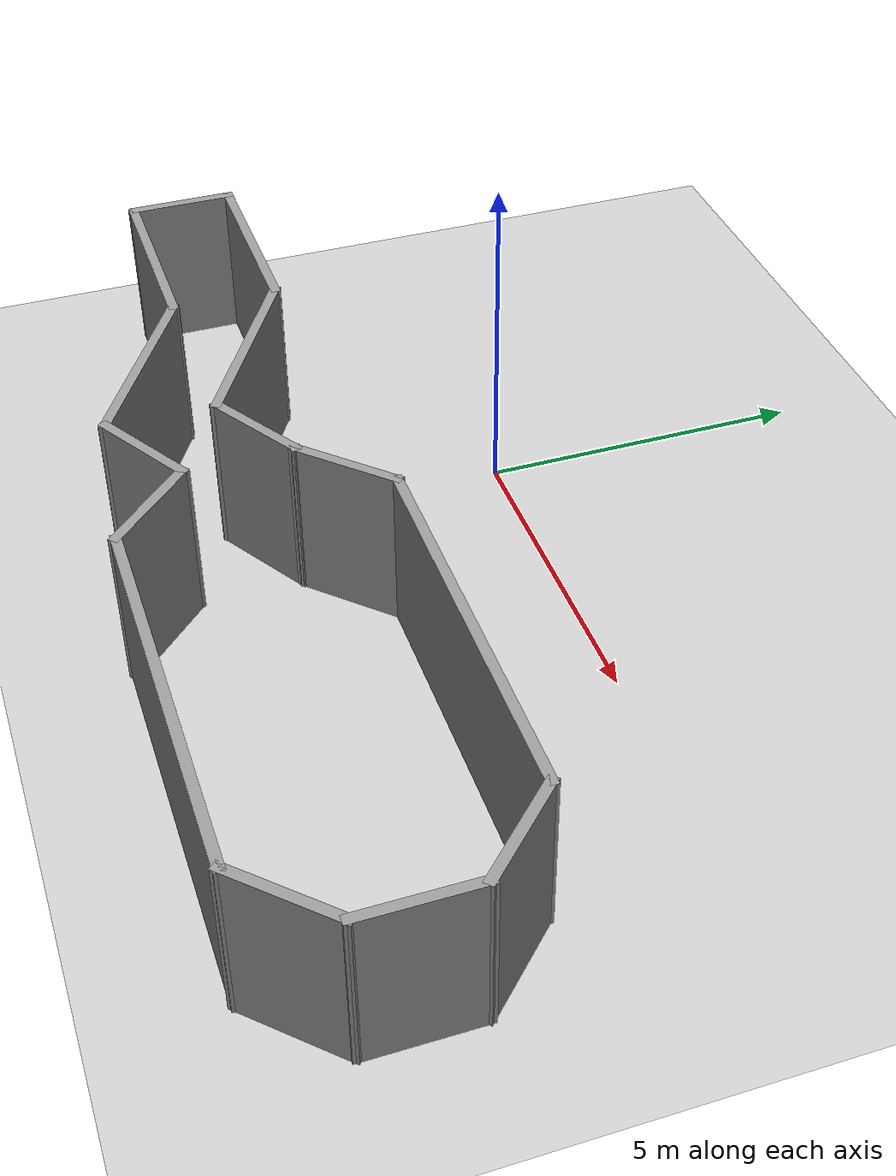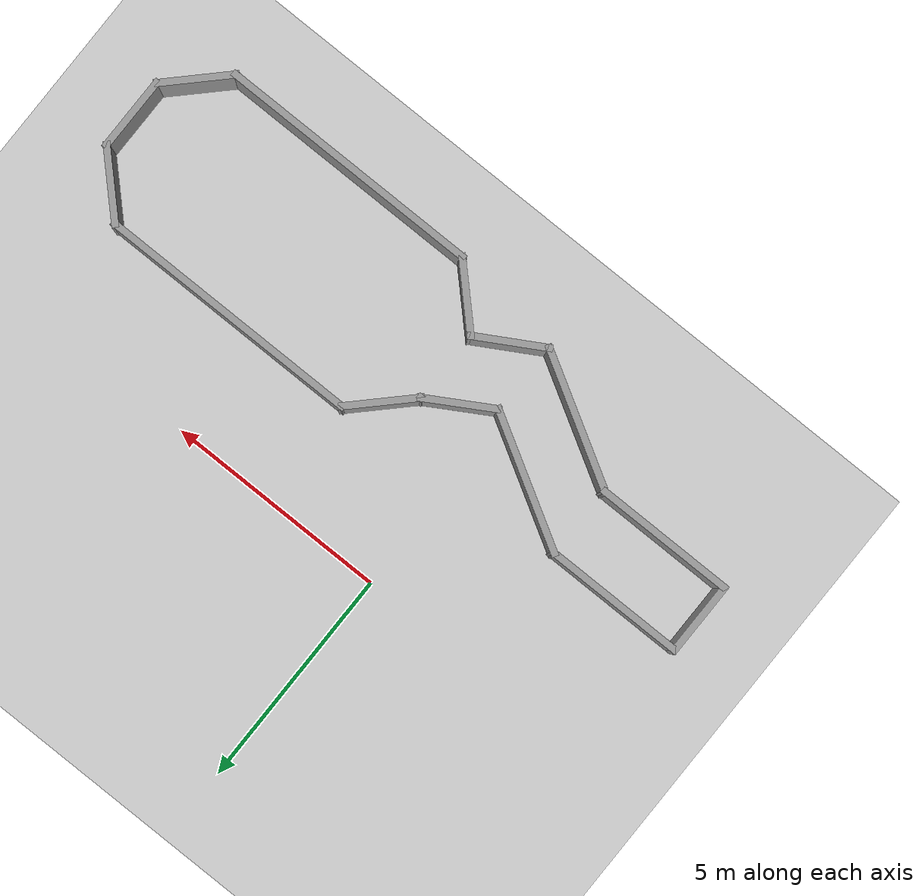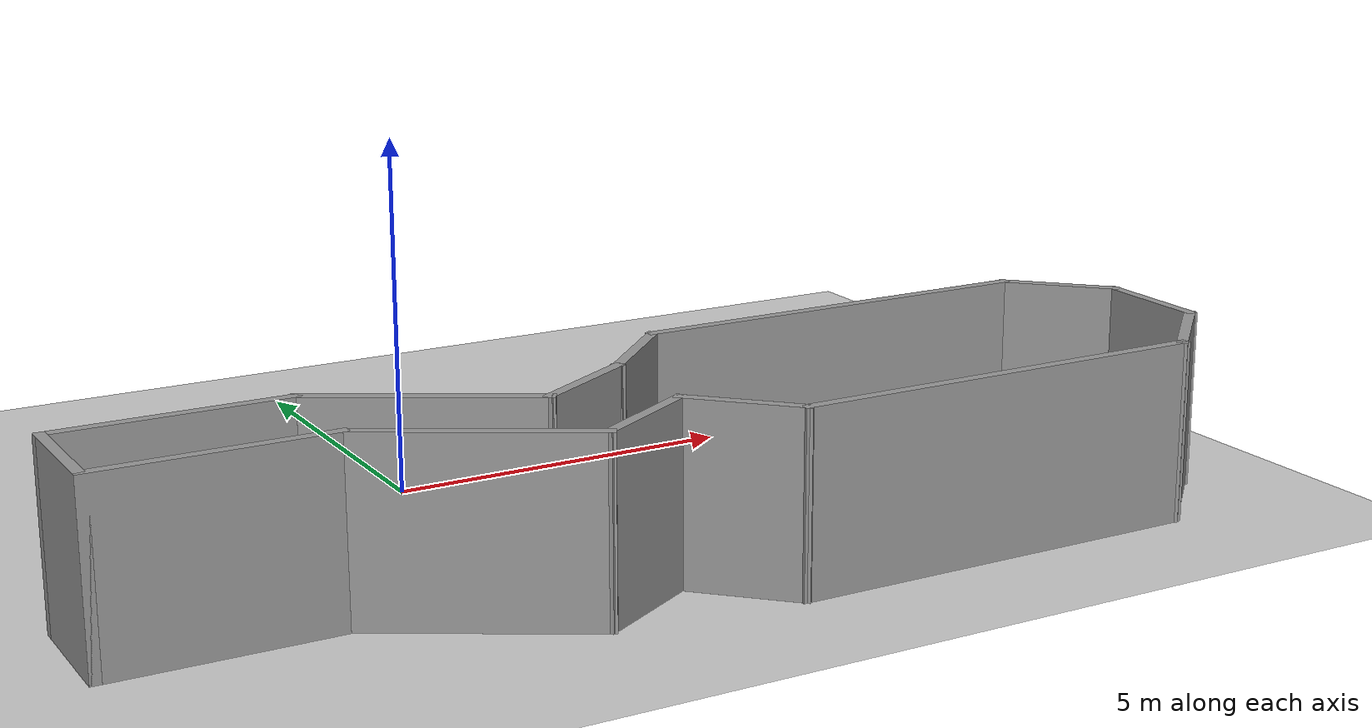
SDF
<sdf version="1.7">
 <world name="racecar_tunnel">
  <light name="sun" type="directional">
   <pose>0 0 10 0 -0 0</pose>
   <diffuse>0.8 0.8 0.8 1</diffuse>
   <specular>0.2 0.2 0.2 1</specular>
   <attenuation>
    <range>1000</range>
    <constant>0.9</constant>
    <linear>0.01</linear>
    <quadratic>0.001</quadratic>
   </attenuation>
   <direction>-0.5 0.1 -0.9</direction>
   <spot><inner_angle>0</inner_angle><outer_angle>0</outer_angle><falloff>0</falloff></spot>
  </light>
  <model name="ground_plane">
   <static>1</static>
   <link name="link">
    <collision name="collision">
     <geometry><plane><normal>0 0 1</normal><size>150 150</size></plane></geometry>
     <surface><friction><ode><mu>100</mu><mu2>50</mu2></ode></friction></surface>
    </collision>
    <visual name="visual">
     <cast_shadows>0</cast_shadows>
     <geometry><plane><normal>0 0 1</normal><size>150 150</size></plane></geometry>
     <material>
      <script><uri>file://media/materials/scripts/gazebo.material</uri><name>Gazebo/Grey</name></script>
     </material>
    </visual>
   </link>
  </model>
  <gravity>0 0 -9.8</gravity>
  <magnetic_field>6e-06 2.3e-05 -4.2e-05</magnetic_field>
  <atmosphere type="adiabatic"/>
  <physics type="ode">
   <max_step_size>0.001</max_step_size>
   <real_time_factor>1</real_time_factor>
   <real_time_update_rate>1000</real_time_update_rate>
  </physics>
  <scene><ambient>0.4 0.4 0.4 1</ambient><background>0.7 0.7 0.7 1</background><shadows>1</shadows></scene>
  <spherical_coordinates>
   <surface_model>EARTH_WGS84</surface_model>
   <latitude_deg>0</latitude_deg>
   <longitude_deg>0</longitude_deg>
   <elevation>0</elevation>
   <heading_deg>0</heading_deg>
  </spherical_coordinates>
  <model name="Untitled1">
   <pose>2.05371 -3.74626 0 0 -0 0</pose>
   <link name="Wall_16">
    <collision name="Wall_16_Collision">
     <geometry><box><size>1.75 0.15 2.5</size></box></geometry>
     <pose>0 0 1.25 0 -0 0</pose>
    </collision>
    <visual name="Wall_16_Visual">
     <pose>0 0 1.25 0 -0 0</pose>
     <geometry><box><size>1.75 0.15 2.5</size></box></geometry>
     <material>
      <script><uri>file://media/materials/scripts/gazebo.material</uri><name>Gazebo/Grey</name></script>
      <ambient>1 1 1 1</ambient>
     </material>
     <meta><layer>0</layer></meta>
    </visual>
    <pose>-7.64384 0.162395 0 0 -0 -1.5708</pose>
   </link>
   <link name="Wall_17">
    <collision name="Wall_17_Collision">
     <geometry><box><size>3.22355 0.15 2.5</size></box></geometry>
     <pose>0 0 1.25 0 -0 0</pose>
    </collision>
    <visual name="Wall_17_Visual">
     <pose>0 0 1.25 0 -0 0</pose>
     <geometry><box><size>3.22355 0.15 2.5</size></box></geometry>
     <material>
      <script><uri>file://media/materials/scripts/gazebo.material</uri><name>Gazebo/Grey</name></script>
      <ambient>1 1 1 1</ambient>
     </material>
     <meta><layer>0</layer></meta>
    </visual>
    <pose>-6.10706 -0.637605 0 0 -0 0</pose>
   </link>
   <link name="Wall_21">
    <collision name="Wall_21_Collision">
     <geometry><box><size>3.25 0.15 2.5</size></box></geometry>
     <pose>0 0 1.25 0 -0 0</pose>
    </collision>
    <visual name="Wall_21_Visual">
     <pose>0 0 1.25 0 -0 0</pose>
     <geometry><box><size>3.25 0.15 2.5</size></box></geometry>
     <material>
      <script><uri>file://media/materials/scripts/gazebo.material</uri><name>Gazebo/Grey</name></script>
      <ambient>1 1 1 1</ambient>
     </material>
     <meta><layer>0</layer></meta>
    </visual>
    <pose>-3.22795 -1.41261 0 0 -0 -0.523599</pose>
   </link>
   <link name="Wall_22">
    <collision name="Wall_22_Collision">
     <geometry><box><size>1.75 0.15 2.5</size></box></geometry>
     <pose>0 0 1.25 0 -0 0</pose>
    </collision>
    <visual name="Wall_22_Visual">
     <pose>0 0 1.25 0 -0 0</pose>
     <geometry><box><size>1.75 0.15 2.5</size></box></geometry>
     <material>
      <script><uri>file://media/materials/scripts/gazebo.material</uri><name>Gazebo/Grey</name></script>
      <ambient>1 1 1 1</ambient>
     </material>
     <meta><layer>0</layer></meta>
    </visual>
    <pose>-1.19279 -1.78761 0 0 -0 0.523599</pose>
   </link>
   <link name="Wall_25">
    <collision name="Wall_25_Collision">
     <geometry><box><size>1.75 0.15 2.5</size></box></geometry>
     <pose>0 0 1.25 0 -0 0</pose>
    </collision>
    <visual name="Wall_25_Visual">
     <pose>0 0 1.25 0 -0 0</pose>
     <geometry><box><size>1.75 0.15 2.5</size></box></geometry>
     <material>
      <script><uri>file://media/materials/scripts/gazebo.material</uri><name>Gazebo/Grey</name></script>
      <ambient>1 1 1 1</ambient>
     </material>
     <meta><layer>0</layer></meta>
    </visual>
    <pose>0.065717 -1.95329 0 0 -0 -0.785398</pose>
   </link>
   <link name="Wall_33">
    <collision name="Wall_33_Collision">
     <geometry><box><size>1.75 0.15 2.5</size></box></geometry>
     <pose>0 0 1.25 0 -0 0</pose>
    </collision>
    <visual name="Wall_33_Visual">
     <pose>0 0 1.25 0 -0 0</pose>
     <geometry><box><size>1.75 0.15 2.5</size></box></geometry>
     <material>
      <script><uri>file://media/materials/scripts/gazebo.material</uri><name>Gazebo/Grey</name></script>
      <ambient>1 1 1 1</ambient>
     </material>
     <meta><layer>0</layer></meta>
    </visual>
    <pose>0.065717 0.778081 0 0 -0 0.785398</pose>
   </link>
   <link name="Wall_35">
    <collision name="Wall_35_Collision">
     <geometry><box><size>3.25 0.15 2.5</size></box></geometry>
     <pose>0 0 1.25 0 -0 0</pose>
    </collision>
    <visual name="Wall_35_Visual">
     <pose>0 0 1.25 0 -0 0</pose>
     <geometry><box><size>3.25 0.15 2.5</size></box></geometry>
     <material>
      <script><uri>file://media/materials/scripts/gazebo.material</uri><name>Gazebo/Grey</name></script>
      <ambient>1 1 1 1</ambient>
     </material>
     <meta><layer>0</layer></meta>
    </visual>
    <pose>-6.09384 0.962395 0 0 -0 0</pose>
   </link>
   <link name="Wall_36">
    <collision name="Wall_36_Collision">
     <geometry><box><size>3.25 0.15 2.5</size></box></geometry>
     <pose>0 0 1.25 0 -0 0</pose>
    </collision>
    <visual name="Wall_36_Visual">
     <pose>0 0 1.25 0 -0 0</pose>
     <geometry><box><size>3.25 0.15 2.5</size></box></geometry>
     <material>
      <script><uri>file://media/materials/scripts/gazebo.material</uri><name>Gazebo/Grey</name></script>
      <ambient>1 1 1 1</ambient>
     </material>
     <meta><layer>0</layer></meta>
    </visual>
    <pose>-3.2015 0.187395 0 0 -0 -0.523599</pose>
   </link>
   <link name="Wall_37">
    <collision name="Wall_37_Collision">
     <geometry><box><size>1.72715 0.15 2.5</size></box></geometry>
     <pose>0 0 1.25 0 -0 0</pose>
    </collision>
    <visual name="Wall_37_Visual">
     <pose>0 0 1.25 0 -0 0</pose>
     <geometry><box><size>1.72715 0.15 2.5</size></box></geometry>
     <material>
      <script><uri>file://media/materials/scripts/gazebo.material</uri><name>Gazebo/Grey</name></script>
      <ambient>1 1 1 1</ambient>
     </material>
     <meta><layer>0</layer></meta>
    </visual>
    <pose>-1.17956 -0.187605 0 0 -0 0.531984</pose>
   </link>
   <link name="Wall_38">
    <collision name="Wall_38_Collision">
     <geometry><box><size>0.15 0.15 2.5</size></box></geometry>
     <pose>0 0 1.25 0 -0 0</pose>
    </collision>
    <visual name="Wall_38_Visual">
     <pose>0 0 1.25 0 -0 0</pose>
     <geometry><box><size>0.15 0.15 2.5</size></box></geometry>
     <material>
      <script><uri>file://media/materials/scripts/gazebo.material</uri><name>Gazebo/Grey</name></script>
      <ambient>1 1 1 1</ambient>
     </material>
     <meta><layer>0</layer></meta>
    </visual>
    <pose>-0.499969 0.212395 0 0 -0 0</pose>
   </link>
   <link name="Wall_40">
    <collision name="Wall_40_Collision">
     <geometry><box><size>6 0.15 2.5</size></box></geometry>
     <pose>0 0 1.25 0 -0 0</pose>
    </collision>
    <visual name="Wall_40_Visual">
     <pose>0 0 1.25 0 -0 0</pose>
     <geometry><box><size>6 0.15 2.5</size></box></geometry>
     <material>
      <script><uri>file://media/materials/scripts/gazebo.material</uri><name>Gazebo/Grey</name></script>
      <ambient>1 1 1 1</ambient>
     </material>
     <meta><layer>0</layer></meta>
    </visual>
    <pose>3.5564 -2.51898 0 0 -0 0</pose>
   </link>
   <link name="Wall_44">
    <collision name="Wall_44_Collision">
     <geometry><box><size>1.75 0.15 2.5</size></box></geometry>
     <pose>0 0 1.25 0 -0 0</pose>
    </collision>
    <visual name="Wall_44_Visual">
     <pose>0 0 1.25 0 -0 0</pose>
     <geometry><box><size>1.75 0.15 2.5</size></box></geometry>
     <material>
      <script><uri>file://media/materials/scripts/gazebo.material</uri><name>Gazebo/Grey</name></script>
      <ambient>1 1 1 1</ambient>
     </material>
     <meta><layer>0</layer></meta>
    </visual>
    <pose>7.04709 -1.95329 0 0 -0 0.785398</pose>
   </link>
   <link name="Wall_46">
    <collision name="Wall_46_Collision">
     <geometry><box><size>6 0.15 2.5</size></box></geometry>
     <pose>0 0 1.25 0 -0 0</pose>
    </collision>
    <visual name="Wall_46_Visual">
     <pose>0 0 1.25 0 -0 0</pose>
     <geometry><box><size>6 0.15 2.5</size></box></geometry>
     <material>
      <script><uri>file://media/materials/scripts/gazebo.material</uri><name>Gazebo/Grey</name></script>
      <ambient>1 1 1 1</ambient>
     </material>
     <meta><layer>0</layer></meta>
    </visual>
    <pose>3.5564 1.34377 0 0 -0 0</pose>
   </link>
   <link name="Wall_47">
    <collision name="Wall_47_Collision">
     <geometry><box><size>1.75 0.15 2.5</size></box></geometry>
     <pose>0 0 1.25 0 -0 0</pose>
    </collision>
    <visual name="Wall_47_Visual">
     <pose>0 0 1.25 0 -0 0</pose>
     <geometry><box><size>1.75 0.15 2.5</size></box></geometry>
     <material>
      <script><uri>file://media/materials/scripts/gazebo.material</uri><name>Gazebo/Grey</name></script>
      <ambient>1 1 1 1</ambient>
     </material>
     <meta><layer>0</layer></meta>
    </visual>
    <pose>7.04709 0.778081 0 0 -0 -0.785398</pose>
   </link>
   <link name="Wall_48">
    <collision name="Wall_48_Collision">
     <geometry><box><size>1.75 0.15 2.5</size></box></geometry>
     <pose>0 0 1.25 0 -0 0</pose>
    </collision>
    <visual name="Wall_48_Visual">
     <pose>0 0 1.25 0 -0 0</pose>
     <geometry><box><size>1.75 0.15 2.5</size></box></geometry>
     <material>
      <script><uri>file://media/materials/scripts/gazebo.material</uri><name>Gazebo/Grey</name></script>
      <ambient>1 1 1 1</ambient>
     </material>
     <meta><layer>0</layer></meta>
    </visual>
    <pose>7.61277 -0.587605 0 0 -0 -1.5708</pose>
   </link>
   <static>1</static>
  </model>
 </world>
</sdf>
